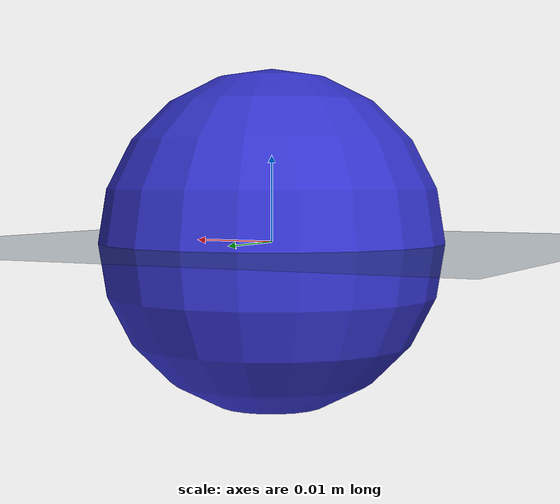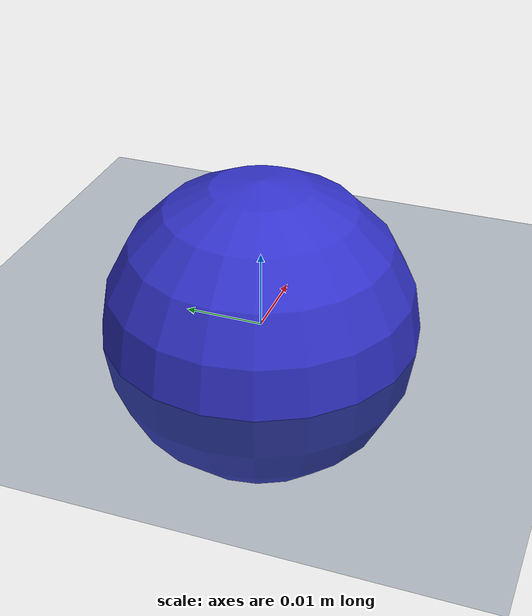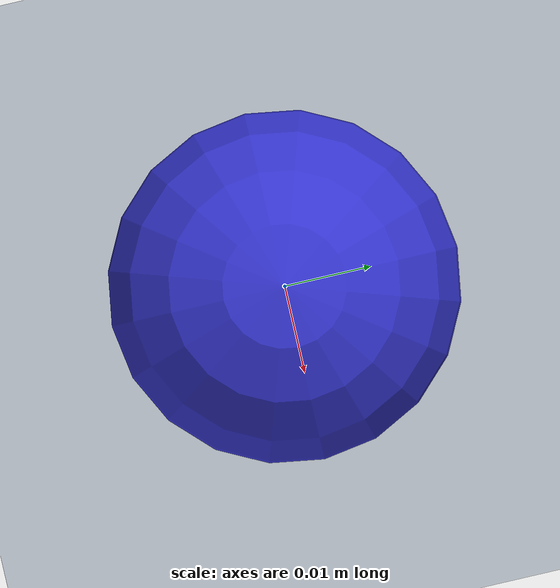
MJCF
<mujoco>

    <worldbody>
    <light pos="0 0 1.5" dir="0 0 -1" directional="true"/>
    <geom name="floor" size="0 0 0.05" type="plane" material="groundplane" friction="0.0 0.0 0.0"  priority="2" condim="4"/>
    </worldbody>

    <worldbody>
        <body name="ball" pos=".0 .0 .0">
            <geom name="gball_0" type="sphere" size="0.02" mass="1." material="BallMat" friction="0.0 0.0 0.0" condim="4"  />
            <site name="sensor_ball" />
            <joint name="joint_x" type="slide" pos="0 0 0" axis="1 0 0"/>
            <joint name="joint_y" type="slide" pos="0 0 0" axis="0 1 0"/>
        </body>

    </worldbody>

    <actuator>
        <motor name="actuator_x" joint="joint_x" gear="1"/>
        <motor name="actuator_y" joint="joint_y" gear="1"/>
    </actuator>

    <asset>
        <!-- Materials for visualization -->
        <material name="MatPlane" rgba="0.8 0.9 0.8 1"/>
        <material name="CubeMat" rgba="0.8 0.2 0.2 1"/>
        <material name="BallMat" rgba="0.2 0.2 0.8 1"/>

    <texture type="skybox" builtin="gradient" rgb1="0.3 0.5 0.7" rgb2="0 0 0" width="512" height="3072"/>
    <texture type="2d" name="groundplane" builtin="checker" mark="edge" rgb1="0.2 0.3 0.4" rgb2="0.1 0.2 0.3"
      markrgb="0.8 0.8 0.8" width="300" height="300"/>
    <material name="groundplane" texture="groundplane" texuniform="true" texrepeat="5 5" reflectance="0.2"/>
    </asset>

    <sensor>
        <velocimeter name="sensor_ball" site="sensor_ball"/>
    </sensor>
</mujoco>
